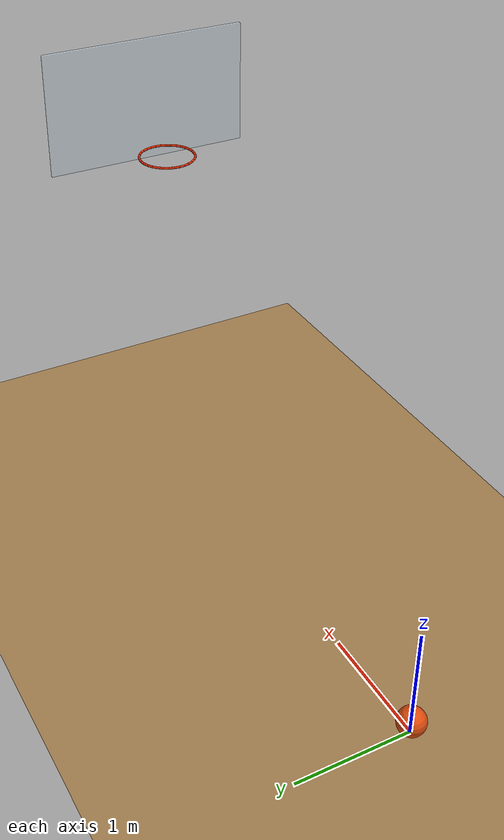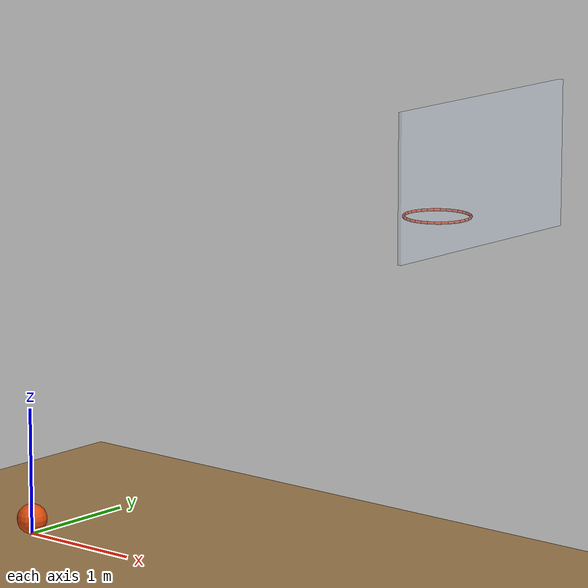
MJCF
<mujoco model="basketball_shot">
  <compiler angle="radian"/>
  <option timestep="0.002" gravity="0 0 -9.81" integrator="implicitfast" iterations="80"/>
  <visual>
    <global offwidth="1280" offheight="720"/>
  </visual>

  <worldbody>
    <light name="court_light" pos="2 -3 8" dir="0 0 -1" diffuse="0.9 0.9 0.9"/>
    <camera name="overview" pos="8 -11 6" xyaxes="0.894427 0.447214 0 -0.138343 0.276686 0.950966"/>

    <geom name="floor" type="plane" size="10 8 0.1" rgba="0.62 0.48 0.30 1" condim="6" friction="0.8 0.01 0.03" solref="0.01 1" solimp="0.95 0.99 0.001"/>

    <!-- Size-7 basketball: circumference 0.754 m, mass 0.624 kg. -->
    <body name="ball" pos="0 0 0.12">
      <freejoint name="ball_free"/>
      <inertial pos="0 0 0" mass="0.624" diaginertia="0.0059904 0.0059904 0.0059904"/>
      <geom name="ball" type="sphere" size="0.12" mass="0.624" rgba="0.88 0.30 0.055 1" condim="6" friction="0.8 0.01 0.03" solref="0.01 1" solimp="0.95 0.99 0.001"/>
    </body>

    <!-- Rim center is 4 m horizontally from launch and 3.05 m above the floor. -->
    <!-- Capsule centerline radius 0.238125 m; tube radius 0.009525 m. -->
    <body name="hoop" pos="4 0 3.05">
      <geom name="rim_00" type="capsule" fromto="0.238125 0 0 0.233549 0.046456 0" size="0.009525" rgba="0.9 0.18 0.035 1"/>
      <geom name="rim_01" type="capsule" fromto="0.233549 0.046456 0 0.219999 0.091127 0" size="0.009525" rgba="0.9 0.18 0.035 1"/>
      <geom name="rim_02" type="capsule" fromto="0.219999 0.091127 0 0.197994 0.132295 0" size="0.009525" rgba="0.9 0.18 0.035 1"/>
      <geom name="rim_03" type="capsule" fromto="0.197994 0.132295 0 0.168380 0.168380 0" size="0.009525" rgba="0.9 0.18 0.035 1"/>
      <geom name="rim_04" type="capsule" fromto="0.168380 0.168380 0 0.132295 0.197994 0" size="0.009525" rgba="0.9 0.18 0.035 1"/>
      <geom name="rim_05" type="capsule" fromto="0.132295 0.197994 0 0.091127 0.219999 0" size="0.009525" rgba="0.9 0.18 0.035 1"/>
      <geom name="rim_06" type="capsule" fromto="0.091127 0.219999 0 0.046456 0.233549 0" size="0.009525" rgba="0.9 0.18 0.035 1"/>
      <geom name="rim_07" type="capsule" fromto="0.046456 0.233549 0 0 0.238125 0" size="0.009525" rgba="0.9 0.18 0.035 1"/>
      <geom name="rim_08" type="capsule" fromto="0 0.238125 0 -0.046456 0.233549 0" size="0.009525" rgba="0.9 0.18 0.035 1"/>
      <geom name="rim_09" type="capsule" fromto="-0.046456 0.233549 0 -0.091127 0.219999 0" size="0.009525" rgba="0.9 0.18 0.035 1"/>
      <geom name="rim_10" type="capsule" fromto="-0.091127 0.219999 0 -0.132295 0.197994 0" size="0.009525" rgba="0.9 0.18 0.035 1"/>
      <geom name="rim_11" type="capsule" fromto="-0.132295 0.197994 0 -0.168380 0.168380 0" size="0.009525" rgba="0.9 0.18 0.035 1"/>
      <geom name="rim_12" type="capsule" fromto="-0.168380 0.168380 0 -0.197994 0.132295 0" size="0.009525" rgba="0.9 0.18 0.035 1"/>
      <geom name="rim_13" type="capsule" fromto="-0.197994 0.132295 0 -0.219999 0.091127 0" size="0.009525" rgba="0.9 0.18 0.035 1"/>
      <geom name="rim_14" type="capsule" fromto="-0.219999 0.091127 0 -0.233549 0.046456 0" size="0.009525" rgba="0.9 0.18 0.035 1"/>
      <geom name="rim_15" type="capsule" fromto="-0.233549 0.046456 0 -0.238125 0 0" size="0.009525" rgba="0.9 0.18 0.035 1"/>
      <geom name="rim_16" type="capsule" fromto="-0.238125 0 0 -0.233549 -0.046456 0" size="0.009525" rgba="0.9 0.18 0.035 1"/>
      <geom name="rim_17" type="capsule" fromto="-0.233549 -0.046456 0 -0.219999 -0.091127 0" size="0.009525" rgba="0.9 0.18 0.035 1"/>
      <geom name="rim_18" type="capsule" fromto="-0.219999 -0.091127 0 -0.197994 -0.132295 0" size="0.009525" rgba="0.9 0.18 0.035 1"/>
      <geom name="rim_19" type="capsule" fromto="-0.197994 -0.132295 0 -0.168380 -0.168380 0" size="0.009525" rgba="0.9 0.18 0.035 1"/>
      <geom name="rim_20" type="capsule" fromto="-0.168380 -0.168380 0 -0.132295 -0.197994 0" size="0.009525" rgba="0.9 0.18 0.035 1"/>
      <geom name="rim_21" type="capsule" fromto="-0.132295 -0.197994 0 -0.091127 -0.219999 0" size="0.009525" rgba="0.9 0.18 0.035 1"/>
      <geom name="rim_22" type="capsule" fromto="-0.091127 -0.219999 0 -0.046456 -0.233549 0" size="0.009525" rgba="0.9 0.18 0.035 1"/>
      <geom name="rim_23" type="capsule" fromto="-0.046456 -0.233549 0 0 -0.238125 0" size="0.009525" rgba="0.9 0.18 0.035 1"/>
      <geom name="rim_24" type="capsule" fromto="0 -0.238125 0 0.046456 -0.233549 0" size="0.009525" rgba="0.9 0.18 0.035 1"/>
      <geom name="rim_25" type="capsule" fromto="0.046456 -0.233549 0 0.091127 -0.219999 0" size="0.009525" rgba="0.9 0.18 0.035 1"/>
      <geom name="rim_26" type="capsule" fromto="0.091127 -0.219999 0 0.132295 -0.197994 0" size="0.009525" rgba="0.9 0.18 0.035 1"/>
      <geom name="rim_27" type="capsule" fromto="0.132295 -0.197994 0 0.168380 -0.168380 0" size="0.009525" rgba="0.9 0.18 0.035 1"/>
      <geom name="rim_28" type="capsule" fromto="0.168380 -0.168380 0 0.197994 -0.132295 0" size="0.009525" rgba="0.9 0.18 0.035 1"/>
      <geom name="rim_29" type="capsule" fromto="0.197994 -0.132295 0 0.219999 -0.091127 0" size="0.009525" rgba="0.9 0.18 0.035 1"/>
      <geom name="rim_30" type="capsule" fromto="0.219999 -0.091127 0 0.233549 -0.046456 0" size="0.009525" rgba="0.9 0.18 0.035 1"/>
      <geom name="rim_31" type="capsule" fromto="0.233549 -0.046456 0 0.238125 0 0" size="0.009525" rgba="0.9 0.18 0.035 1"/>

      <geom name="backboard" type="box" pos="0.39 0 0.375" size="0.015 0.9 0.525" rgba="0.82 0.90 0.96 0.45"/>
    </body>
  </worldbody>

  <!-- Nominal ballistic trajectory crosses the rim center downward at 1.60 s. -->
  <!-- Dissipative floor contact and rolling friction stop the ball after landing. -->
  <keyframe>
    <key name="start" qpos="0 0 0.12 1 0 0 0" qvel="2.5 0 9.67925 0 0 0"/>
  </keyframe>
</mujoco>
